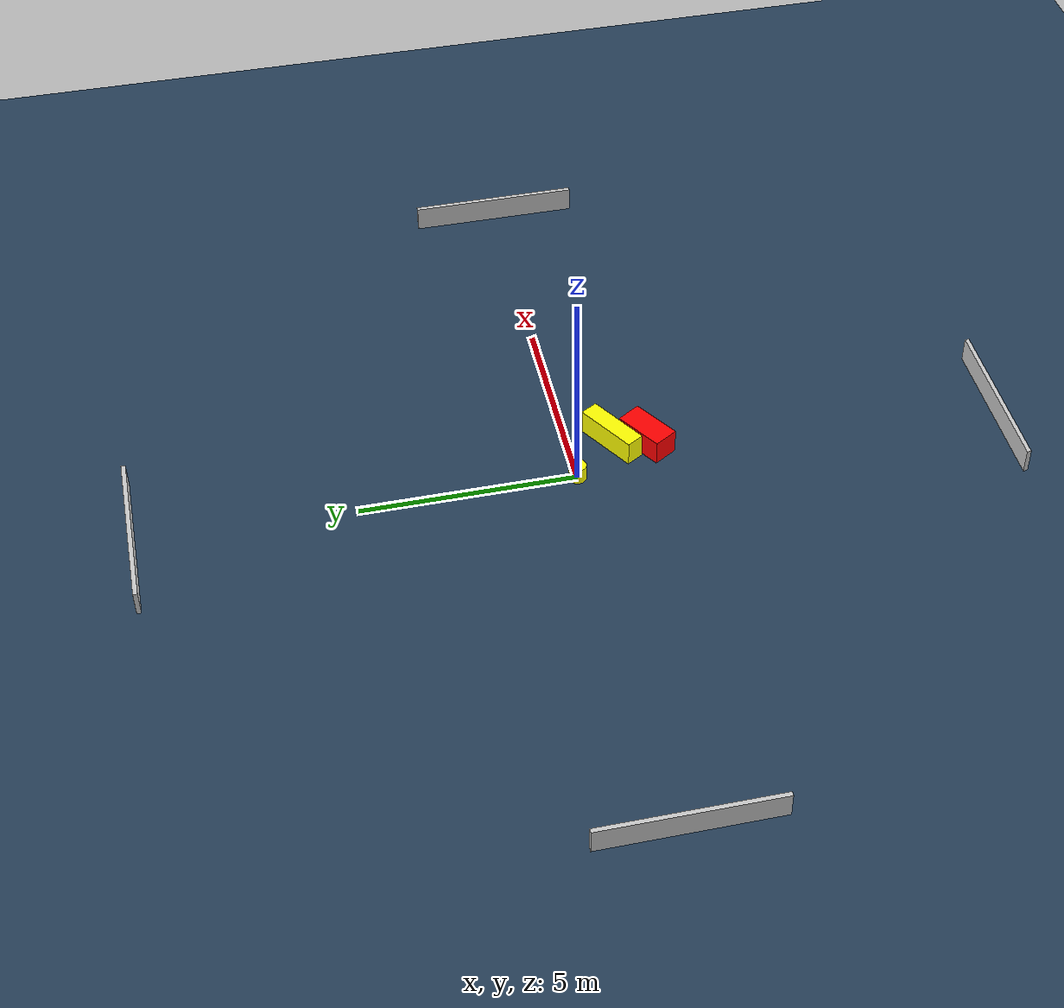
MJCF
<?xml version="1.0" ?>
<mujoco model="generated_environment">
  <option timestep="0.01" integrator="RK4" cone="elliptic"/>
  <default>
    <geom density="1"/>
  </default>
  <asset>
    <texture builtin="gradient" height="3072" name="skybox" rgb1="0.3 0.5 0.7" rgb2="0 0 0" type="skybox" width="512"/>
    <texture builtin="checker" height="300" name="groundplane" rgb1="0.2 0.3 0.4" rgb2="0.1 0.2 0.3" type="2d" width="300"/>
    <material name="groundplane" reflectance="0.2" texrepeat="5 5" texture="groundplane"/>
  </asset>
  <worldbody>
    <light dir="0 0 -1" directional="true" pos="0 0 1.5"/>
    <geom condim="3" friction="0.5 0.005 0.001" material="groundplane" name="floor" pos="0 0 0" size="0 0 0.05" type="plane"/>
    <body name="walls">
      <geom name="wall_1" condim="4" pos="-10.0 0.0 0.3" rgba="0.800000011920929 0.800000011920929 0.800000011920929 1.0" size="0.05 2.0 0.3" type="box"/>
      <geom name="wall_2" condim="4" pos="10.0 0.0 0.3" rgba="0.800000011920929 0.800000011920929 0.800000011920929 1.0" size="0.05 2.0 0.3" type="box"/>
      <geom name="wall_3" condim="4" pos="0.0 -10.0 0.3" rgba="0.800000011920929 0.800000011920929 0.800000011920929 1.0" size="2.0 0.05 0.3" type="box"/>
      <geom name="wall_4" condim="4" pos="0.0 10.0 0.3" rgba="0.800000011920929 0.800000011920929 0.800000011920929 1.0" size="2.0 0.05 0.3" type="box"/>
    </body>
    <body name="robot">
      <joint name="joint_x" type="slide" pos="0 0 0" axis="1 0 0"/>
      <joint name="joint_y" type="slide" pos="0 0 0" axis="0 1 0"/>
      <geom name="robot" type="cylinder" pos="0.0 0.0 0.2" size="0.2 0.2 0.0" mass="5.0" friction="1.0 0.005 0.0001" condim="4" rgba="1.0 1.0 0.0 1.0"/>
    </body>
    <body name="obstacle_1_movable">
      <geom name="obstacle_1_movable" condim="4" pos="0.9518501870550207 -1.0170142296646079 0.3" euler="0 0 301.1917969673268" friction="0.0 0.005 0.001" rgba="1.0 1.0 0.0 1.0" size="0.2166203206450317 0.7635942413697139 0.3" type="box" mass="0.1"/>
      <joint type="free"/>
    </body>
    <body name="obstacle_2_static">
      <geom name="obstacle_2_static" condim="4" pos="0.7469910114394593 -1.798232478336955 0.3" euler="0 0 211.78701459128052" friction="0.0 0.005 0.001" rgba="1.0 0.0 0.0 1.0" size="0.6034587836791956 0.30249699609205905 0.3" type="box"/>
    </body>
  </worldbody>
  <actuator>
    <motor name="actuator_x" joint="joint_x" gear="1" ctrlrange="-1 1"/>
    <motor name="actuator_y" joint="joint_y" gear="1" ctrlrange="-1 1"/>
  </actuator>
</mujoco>
